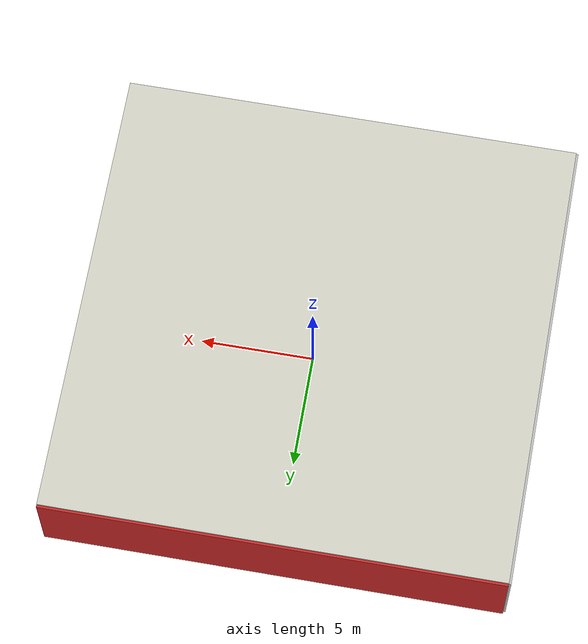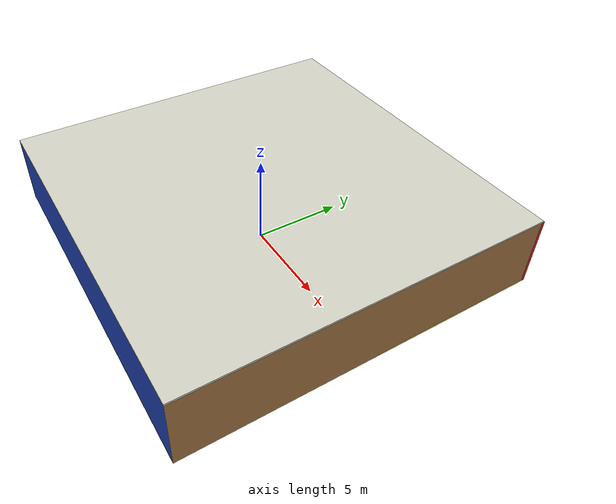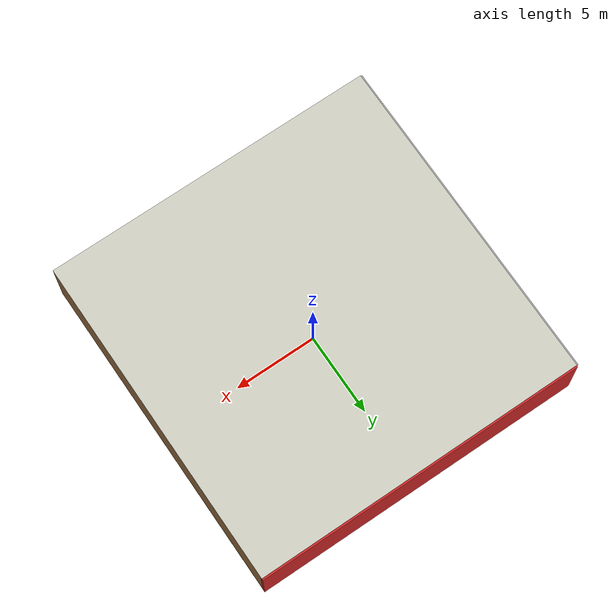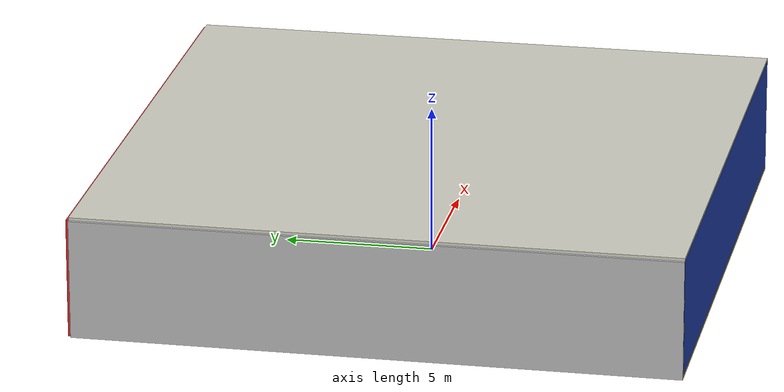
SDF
<sdf version="1.4">
 <world name="default">
  <physics type="ode">
   <max_step_size>0.001</max_step_size>
   <real_time_factor>1</real_time_factor>
   <real_time_update_rate>1000</real_time_update_rate>
   <gravity>0 0 -9.8</gravity>
  </physics>
  <scene><ambient>0.4 0.4 0.4 1</ambient><background>0.7 0.7 0.7 1</background><shadows>1</shadows></scene>
  <model name="Surrounding">
   <static>1</static>
   <link name="Ceiling">
    <collision name="Ceiling_Collision"><geometry><box><size>20 20 0.1</size></box></geometry></collision>
    <visual name="Ceiling_Visual">
     <geometry><box><size>20 20 0.1</size></box></geometry>
     <material>
      <script><uri>file://media/materials/scripts/gazebo.material</uri><name>Gazebo/PaintedWall</name></script>
     </material>
    </visual>
    <pose>0 0 4.05 0 0 0</pose>
   </link>
   <link name="Wall_South">
    <collision name="Wall_South_Collision">
     <geometry><box><size>20 0 4</size></box></geometry>
     <pose>0 0 2 0 -0 0</pose>
    </collision>
    <visual name="Wall_South_Visual">
     <pose>0 0 2 0 -0 0</pose>
     <geometry><box><size>20 0 4</size></box></geometry>
     <material>
      <script><uri>file://media/materials/scripts/gazebo.material</uri><name>Gazebo/BlueGlow</name></script>
     </material>
    </visual>
    <velocity_decay><linear>0</linear><angular>0</angular></velocity_decay>
    <pose>0 -10 0 0 -0 0</pose>
   </link>
   <link name="Wall_East">
    <collision name="Wall_21_Collision">
     <geometry><box><size>20 0 4</size></box></geometry>
     <pose>0 0 2 0 -0 0</pose>
    </collision>
    <visual name="Wall_21_Visual">
     <pose>0 0 2 0 -0 0</pose>
     <geometry><box><size>20 0 4</size></box></geometry>
     <material>
      <script><uri>file://media/materials/scripts/gazebo.material</uri><name>Gazebo/WoodFloor</name></script>
     </material>
    </visual>
    <velocity_decay><linear>0</linear><angular>0</angular></velocity_decay>
    <pose>10 0 0 0 -0 1.5708</pose>
   </link>
   <link name="Wall_North">
    <collision name="Wall_22_Collision">
     <geometry><box><size>20 0.2 4</size></box></geometry>
     <pose>0 0 2 0 -0 0</pose>
    </collision>
    <visual name="Wall_22_Visual">
     <pose>0 0 2 0 -0 0</pose>
     <geometry><box><size>20 0.2 4</size></box></geometry>
     <material>
      <script><uri>file://media/materials/scripts/gazebo.material</uri><name>Gazebo/Red</name></script>
     </material>
    </visual>
    <velocity_decay><linear>0</linear><angular>0</angular></velocity_decay>
    <pose>0 10 0 0 -0 0</pose>
   </link>
   <link name="Wall_West">
    <collision name="Wall_23_Collision">
     <geometry><box><size>20 0.2 4</size></box></geometry>
     <pose>0 0 2 0 -0 0</pose>
    </collision>
    <visual name="Wall_23_Visual">
     <pose>0 0 2 0 -0 0</pose>
     <geometry><box><size>20 0.2 4</size></box></geometry>
     <material>
      <script><uri>file://media/materials/scripts/gazebo.material</uri><name>Gazebo/PioneerBody</name></script>
     </material>
    </visual>
    <velocity_decay><linear>0</linear><angular>0</angular></velocity_decay>
    <pose>-10 0 0 0 0 -1.5708</pose>
   </link>
   <link name="Ground_link">
    <collision name="collision">
     <pose>0 0 .05 0 -0 0</pose>
     <geometry><box><size>20 20 0.1</size></box></geometry>
    </collision>
    <visual name="visual">
     <pose>0 0 .05 0 -0 0</pose>
     <geometry><box><size>20 20 0.1</size></box></geometry>
     <material>
      <script><uri>file://media/materials/scripts/gazebo.material</uri><name>Gazebo/Gold</name></script>
     </material>
    </visual>
   </link>
   <static>1</static>
  </model>
  <spherical_coordinates>
   <surface_model>EARTH_WGS84</surface_model>
   <latitude_deg>0</latitude_deg>
   <longitude_deg>0</longitude_deg>
   <elevation>0</elevation>
   <heading_deg>0</heading_deg>
  </spherical_coordinates>
  <light name="lightball_0" type="diffuse">
   <diffuse>0.8 0.8 0.8 1</diffuse>
   <specular>0.2 0.2 0.2 1</specular>
   <attenuation>
    <range>100</range>
    <constant>0.7</constant>
    <linear>0.01</linear>
    <quadratic>0.001</quadratic>
   </attenuation>
   <direction>-0.5 0.1 -0.9</direction>
   <pose>2.20196369041 9.2905808448 1.85873892885 0 0 0</pose>
  </light>
  <light name="lightball_1" type="diffuse">
   <diffuse>0.8 0.8 0.8 1</diffuse>
   <specular>0.2 0.2 0.2 1</specular>
   <attenuation>
    <range>100</range>
    <constant>0.7</constant>
    <linear>0.01</linear>
    <quadratic>0.001</quadratic>
   </attenuation>
   <direction>-0.5 0.1 -0.9</direction>
   <pose>6.35239250169 2.02861899865 2.2590950006 0 0 0</pose>
  </light>
  <light name="lightball_2" type="diffuse">
   <diffuse>0.8 0.8 0.8 1</diffuse>
   <specular>0.2 0.2 0.2 1</specular>
   <attenuation>
    <range>100</range>
    <constant>0.7</constant>
    <linear>0.01</linear>
    <quadratic>0.001</quadratic>
   </attenuation>
   <direction>-0.5 0.1 -0.9</direction>
   <pose>5.57105225244 -1.67766881179 3.30528491307 0 0 0</pose>
  </light>
  <light name="lightball_3" type="diffuse">
   <diffuse>0.8 0.8 0.8 1</diffuse>
   <specular>0.2 0.2 0.2 1</specular>
   <attenuation>
    <range>100</range>
    <constant>0.7</constant>
    <linear>0.01</linear>
    <quadratic>0.001</quadratic>
   </attenuation>
   <direction>-0.5 0.1 -0.9</direction>
   <pose>1.99121398046 2.73133039501 3.14437304231 0 0 0</pose>
  </light>
  <light name="lightball_4" type="diffuse">
   <diffuse>0.8 0.8 0.8 1</diffuse>
   <specular>0.2 0.2 0.2 1</specular>
   <attenuation>
    <range>100</range>
    <constant>0.7</constant>
    <linear>0.01</linear>
    <quadratic>0.001</quadratic>
   </attenuation>
   <direction>-0.5 0.1 -0.9</direction>
   <pose>8.86043200879 -7.83891446447 0.937028734216 0 0 0</pose>
  </light>
  <include><uri>model://cabinet</uri><pose>-3.75335107024 -2.60943928378 0 0 0 2.51683701891</pose></include>
  <include>
   <uri>model://textured_shapes</uri>
   <pose>-0.531896641307 6.8601261736 0 0 0 0.647291359981</pose>
  </include>
  <include>
   <uri>model://construction_cone</uri>
   <pose>5.52170807555 -2.24797814037 0 0 0 2.752245015</pose>
  </include>
  <include><uri>model://cabinet</uri><pose>5.61828343876 2.60046886372 0 0 0 0.296855647353</pose></include>
  <include>
   <uri>model://robocup_3Dsim_goal</uri>
   <pose>6.92608986243 8.34853195388 0 0 0 1.09891061436</pose>
  </include>
 </world>
</sdf>

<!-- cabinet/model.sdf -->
<sdf version="1.5">
  <model name="cabinet">
    <static>true</static>
    <link name="cabinet_bottom_plate">
      <inertial>
        <pose>0 0 -1 0 0 0</pose>
        <inertia>
          <ixx>2.050000</ixx>
          <ixy>0</ixy>
          <ixz>0</ixz>
          <iyy>2.050000</iyy>
          <iyz>0</iyz>
          <izz>2.050000</izz>
        </inertia>
        <mass>25.000000</mass>
      </inertial>
      <collision name="cabinet_bottom_plate_geom">
        <pose>0 0 0.010000 0 0 0</pose>
        <geometry>
          <box>
            <size>0.450000 0.450000 0.020000</size>
          </box>
        </geometry>
      </collision>
      <visual name="cabinet_bottom_plate_geom_visual">
        <pose>0 0 0.010000 0 0 0</pose>
        <geometry>
          <box>
            <size>0.450000 0.450000 0.020000</size>
          </box>
        </geometry>
        <material>
          <script>
            <uri>model://media/materials/scripts/gazebo.material</uri>
            <name>Gazebo/Wood</name>
          </script>
        </material>
      </visual>
      <collision name="cabinet_bottom_plate_geom_cabinet_back_plate">
        <pose>0.235000 0 0.510000 0 0 0</pose>
        <geometry>
          <box>
            <size>0.020000 0.450000 1.020000</size>
          </box>
        </geometry>
      </collision>
      <visual name="cabinet_bottom_plate_geom_cabinet_back_plate_visual">
        <pose>0.235000 0 0.510000 0 0 0</pose>
        <geometry>
          <box>
            <size>0.020000 0.450000 1.020000</size>
          </box>
        </geometry>
        <material>
          <script>
            <uri>model://media/materials/scripts/gazebo.material</uri>
            <name>Gazebo/Wood</name>
          </script>
        </material>
      </visual>
      <collision name="cabinet_bottom_plate_geom_cabinet_left_plate">
        <pose>0 0.235000 0.510000 0 0 0</pose>
        <geometry>
          <box>
            <size>0.450000 0.020000 1.020000</size>
          </box>
        </geometry>
      </collision>
      <visual name="cabinet_bottom_plate_geom_cabinet_left_plate_visual">
        <pose>0 0.235000 0.510000 0 0 0</pose>
        <geometry>
          <box>
            <size>0.450000 0.020000 1.020000</size>
          </box>
        </geometry>
        <material>
          <script>
            <uri>model://media/materials/scripts/gazebo.material</uri>
            <name>Gazebo/Wood</name>
          </script>
        </material>
      </visual>
      <collision name="cabinet_bottom_plate_geom_cabinet_middle_plate">
        <pose>0 0 0.510000 0 0 0</pose>
        <geometry>
          <box>
            <size>0.450000 0.450000 0.020000</size>
          </box>
        </geometry>
      </collision>
      <visual name="cabinet_bottom_plate_geom_cabinet_middle_plate_visual">
        <pose>0 0 0.510000 0 0 0</pose>
        <geometry>
          <box>
            <size>0.450000 0.450000 0.020000</size>
          </box>
        </geometry>
        <material>
          <script>
            <uri>model://media/materials/scripts/gazebo.material</uri>
            <name>Gazebo/Wood</name>
          </script>
        </material>
      </visual>
      <collision name="cabinet_bottom_plate_geom_cabinet_right_plate">
        <pose>0 -0.235000 0.510000 0 0 0</pose>
        <geometry>
          <box>
            <size>0.450000 0.020000 1.020000</size>
          </box>
        </geometry>
      </collision>
      <visual name="cabinet_bottom_plate_geom_cabinet_right_plate_visual">
        <pose>0 -0.235000 0.510000 0 0 0</pose>
        <geometry>
          <box>
            <size>0.450000 0.020000 1.020000</size>
          </box>
        </geometry>
        <material>
          <script>
            <uri>model://media/materials/scripts/gazebo.material</uri>
            <name>Gazebo/Wood</name>
          </script>
        </material>
      </visual>
      <collision name="cabinet_bottom_plate_geom_cabinet_top_plate">
        <pose>0 0 1.010000 0 0 0</pose>
        <geometry>
          <box>
            <size>0.450000 0.450000 0.020000</size>
          </box>
        </geometry>
      </collision>
      <visual name="cabinet_bottom_plate_geom_cabinet_top_plate_visual">
        <pose>0 0 1.010000 0 0 0</pose>
        <geometry>
          <box>
            <size>0.450000 0.450000 0.020000</size>
          </box>
        </geometry>
        <material>
          <script>
            <uri>model://media/materials/scripts/gazebo.material</uri>
            <name>Gazebo/Wood</name>
          </script>
        </material>
      </visual>
    </link>
  </model>
</sdf>

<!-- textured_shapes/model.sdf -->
<sdf version="1.6">
  <model name="textured_shapes">
    <pose>0 0 0.5 0 0 0</pose>
    <link name="box">
      <pose>0 -1.5 0 0 0 0</pose>
      <collision name="collision">
        <geometry>
          <box>
            <size>1 1 1</size>
          </box>
        </geometry>
      </collision>
      <visual name="visual">
        <geometry>
          <box>
            <size>1 1 1</size>
          </box>
        </geometry>
        <material>
          <script>
            <uri>model://../model_source/models/textured_shapes/materials/scripts</uri>
            <uri>model://../model_source/models/textured_shapes/materials/textures</uri>
            <name>TexturedShape/Squares</name>
          </script>
        </material>
      </visual>
    </link>
    <link name="sphere">
      <collision name="collision">
        <geometry>
          <sphere>
            <radius>0.5</radius>
          </sphere>
        </geometry>
      </collision>
      <visual name="visual">
        <geometry>
          <sphere>
            <radius>0.5</radius>
          </sphere>
        </geometry>
        <material>
          <script>
            <uri>model://../model_source/models/textured_shapes/materials/scripts</uri>
            <uri>model://../model_source/models/textured_shapes/materials/textures</uri>
            <name>TexturedShape/Squares</name>
          </script>
        </material>
      </visual>
    </link>
    <link name="cylinder">
      <pose>0 1.5 0 0 0 0</pose>
      <collision name="collision">
        <geometry>
          <cylinder>
            <radius>0.5</radius>
            <length>1</length>
          </cylinder>
        </geometry>
      </collision>
      <visual name="visual">
        <geometry>
          <cylinder>
            <radius>0.5</radius>
            <length>1</length>
          </cylinder>
        </geometry>
        <material>
          <script>
            <uri>model://../model_source/models/textured_shapes/materials/scripts</uri>
            <uri>model://../model_source/models/textured_shapes/materials/textures</uri>
            <name>TexturedShape/Squares</name>
          </script>
        </material>
      </visual>
    </link>
  </model>
</sdf>

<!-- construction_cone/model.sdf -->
<sdf version="1.5">
  <model name="Construction Cone">
    <link name="link">
      <collision name="collision">
        <geometry>
          <mesh>
            <scale>10 10 10</scale>
            <uri>file://isr-testbed/construction_cone/meshes/construction_cone.dae</uri>
          </mesh>
        </geometry>
      </collision>
      <visual name="visual">
        <geometry>
          <mesh>
            <scale>10 10 10</scale>
            <uri>file://isr-testbed/construction_cone/meshes/construction_cone.dae</uri>
          </mesh>
        </geometry>
      </visual>
    </link>
  </model>
</sdf>

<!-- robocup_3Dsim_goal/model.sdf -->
<sdf version="1.5">
  <model name="robocup_3d_goal">
    <static>true</static>
    <link name="left_post">
      <pose>0 1.05 0.45 0 0 0</pose>
      <collision name="collision">
        <geometry>
          <cylinder>
            <radius>0.05</radius>
            <length>0.9</length>
          </cylinder>
        </geometry>
      </collision>
      <visual name="visual">
        <geometry>
          <cylinder>
            <radius>0.05</radius>
            <length>0.9</length>
          </cylinder>
        </geometry>
        <material>
          <script>
            <uri>file://media/materials/scripts/gazebo.material</uri>
            <name>Gazebo/ZincYellow</name>
          </script>
        </material>
      </visual>
    </link>
    <link name="left_support_horiz_lower">
      <pose>0.30 1.05 0.01 0 0 0</pose>
      <collision name="collision">
        <geometry>
          <box>
            <size>0.50 0.02 0.02</size>
          </box>
        </geometry>
      </collision>
      <visual name="visual">
        <geometry>
          <box>
            <size>0.50 0.02 0.02</size>
          </box>
        </geometry>
        <material>
          <script>
            <uri>file://media/materials/scripts/gazebo.material</uri>
            <name>Gazebo/White</name>
          </script>
        </material>
      </visual>
    </link>
    <link name="left_support_horiz_upper">
      <pose>0.30 1.05 0.79 0 0 0</pose>
      <collision name="collision">
        <geometry>
          <box>
            <size>0.50 0.02 0.02</size>
          </box>
        </geometry>
      </collision>
      <visual name="visual">
        <geometry>
          <box>
            <size>0.50 0.02 0.02</size>
          </box>
        </geometry>
        <material>
          <script>
            <uri>file://media/materials/scripts/gazebo.material</uri>
            <name>Gazebo/White</name>
          </script>
        </material>
      </visual>
    </link>
    <link name="left_support_vertical">
      <pose>0.56 1.05 0.4 0 1.5708 0</pose>
      <collision name="collision">
        <geometry>
          <box>
            <size>0.80 0.02 0.02</size>
          </box>
        </geometry>
      </collision>
      <visual name="visual">
        <geometry>
          <box>
            <size>0.80 0.02 0.02</size>
          </box>
        </geometry>
        <material>
          <script>
            <uri>file://media/materials/scripts/gazebo.material</uri>
            <name>Gazebo/White</name>
          </script>
        </material>
      </visual>
    </link>
    <link name="right_support_horiz_lower">
      <pose>0.30 -1.05 0.01 0 0 0</pose>
      <collision name="collision">
        <geometry>
          <box>
            <size>0.50 0.02 0.02</size>
          </box>
        </geometry>
      </collision>
      <visual name="visual">
        <geometry>
          <box>
            <size>0.50 0.02 0.02</size>
          </box>
        </geometry>
        <material>
          <script>
            <uri>file://media/materials/scripts/gazebo.material</uri>
            <name>Gazebo/White</name>
          </script>
        </material>
      </visual>
    </link>
    <link name="right_support_horiz_upper">
      <pose>0.30 -1.05 0.79 0 0 0</pose>
      <collision name="collision">
        <geometry>
          <box>
            <size>0.50 0.02 0.02</size>
          </box>
        </geometry>
      </collision>
      <visual name="visual">
        <geometry>
          <box>
            <size>0.50 0.02 0.02</size>
          </box>
        </geometry>
        <material>
          <script>
            <uri>file://media/materials/scripts/gazebo.material</uri>
            <name>Gazebo/White</name>
          </script>
        </material>
      </visual>
    </link>
    <link name="right_support_vertical">
      <pose>0.56 -1.05 0.4 0 1.5708 0</pose>
      <collision name="collision">
        <geometry>
          <box>
            <size>0.80 0.02 0.02</size>
          </box>
        </geometry>
      </collision>
      <visual name="visual">
        <geometry>
          <box>
            <size>0.80 0.02 0.02</size>
          </box>
        </geometry>
        <material>
          <script>
            <uri>file://media/materials/scripts/gazebo.material</uri>
            <name>Gazebo/White</name>
          </script>
        </material>
      </visual>
    </link>
    <link name="center_support_horiz_lower">
      <pose>0.56 0 0.01 0 1.5708 0</pose>
      <collision name="collision">
        <geometry>
          <box>
            <size>0.02 2.08 0.02</size>
          </box>
        </geometry>
      </collision>
      <visual name="visual">
        <geometry>
          <box>
            <size>0.02 2.08 0.02</size>
          </box>
        </geometry>
        <material>
          <script>
            <uri>file://media/materials/scripts/gazebo.material</uri>
            <name>Gazebo/White</name>
          </script>
        </material>
      </visual>
    </link>
    <link name="center_support_horiz_upper">
      <pose>0.56 0 0.79 0 1.5708 0</pose>
      <collision name="collision">
        <geometry>
          <box>
            <size>0.02 2.08 0.02</size>
          </box>
        </geometry>
      </collision>
      <visual name="visual">
        <geometry>
          <box>
            <size>0.02 2.08 0.02</size>
          </box>
        </geometry>
        <material>
          <script>
            <uri>file://media/materials/scripts/gazebo.material</uri>
            <name>Gazebo/White</name>
          </script>
        </material>
      </visual>
    </link>
    <link name="right_post">
      <pose>0 -1.05 0.45 0 0 0</pose>
      <collision name="collision">
        <geometry>
          <cylinder>
            <radius>0.05</radius>
            <length>0.9</length>
          </cylinder>
        </geometry>
      </collision>
      <visual name="visual">
        <geometry>
          <cylinder>
            <radius>0.05</radius>
            <length>0.9</length>
          </cylinder>
        </geometry>
        <material>
          <script>
            <uri>file://media/materials/scripts/gazebo.material</uri>
            <name>Gazebo/ZincYellow</name>
          </script>
        </material>
      </visual>
    </link>
    <link name="crossbar">
      <pose>0 0 0.85 1.57 1.57 0</pose>
      <collision name="collision">
        <geometry>
          <cylinder>
            <radius>0.05</radius>
            <length>2.0</length>
          </cylinder>
        </geometry>
      </collision>
      <visual name="visual">
        <geometry>
          <cylinder>
            <radius>0.05</radius>
            <length>2.0</length>
          </cylinder>
        </geometry>
        <material>
          <script>
            <uri>file://media/materials/scripts/gazebo.material</uri>
            <name>Gazebo/ZincYellow</name>
          </script>
        </material>
      </visual>
    </link>
    <link name="center_net">
      <pose>0.56 0 0.40 0 0 0</pose>
      <collision name="collision">
        <geometry>
          <box>
            <size>0.01 2.1 0.80</size>
          </box>
        </geometry>
      </collision>
      <visual name="visual">
        <geometry>
          <box>
            <size>0.01 2.1 0.80</size>
          </box>
        </geometry>
        <material>
          <script>
            <uri>model://../model_source/models/robocup09_spl_field/materials/scripts/</uri>
            <uri>model://../model_source/models/robocup09_spl_field/materials/textures/</uri>
            <name>RoboCup/Net</name>
          </script>
        </material>
      </visual>
    </link>
    <link name="left_net">
      <pose>0.30 1.05 0.40 0 0 0</pose>
      <collision name="collision">
        <geometry>
          <box>
            <size>0.50 0.01 0.76</size>
          </box>
        </geometry>
      </collision>
      <visual name="visual">
        <geometry>
          <box>
            <size>0.50 0.01 0.76</size>
          </box>
        </geometry>
        <material>
          <script>
            <uri>model://../model_source/models/robocup09_spl_field/materials/scripts/</uri>
            <uri>model://../model_source/models/robocup09_spl_field/materials/textures/</uri>
            <name>RoboCup/Net</name>
          </script>
        </material>
      </visual>
    </link>
    <link name="right_net">
      <pose>0.30 -1.05 0.40 0 0 0</pose>
      <collision name="collision">
        <geometry>
          <box>
            <size>0.50 0.01 0.76</size>
          </box>
        </geometry>
      </collision>
      <visual name="visual">
        <geometry>
          <box>
            <size>0.50 0.01 0.76</size>
          </box>
        </geometry>
        <material>
          <script>
            <uri>model://../model_source/models/robocup09_spl_field/materials/scripts/</uri>
            <uri>model://../model_source/models/robocup09_spl_field/materials/textures/</uri>
            <name>RoboCup/Net</name>
          </script>
        </material>
      </visual>
    </link>
  </model>
</sdf>
